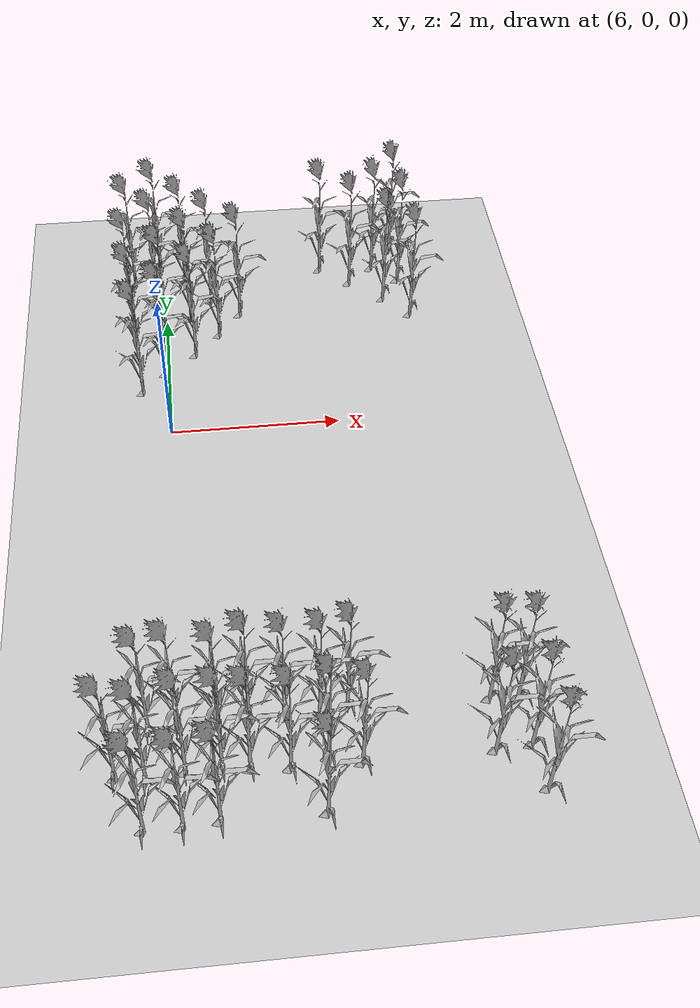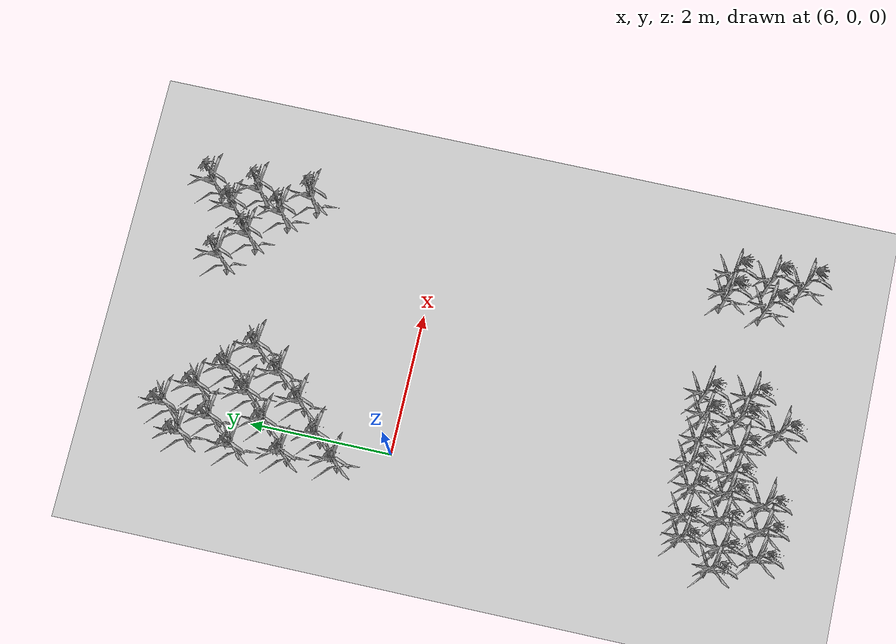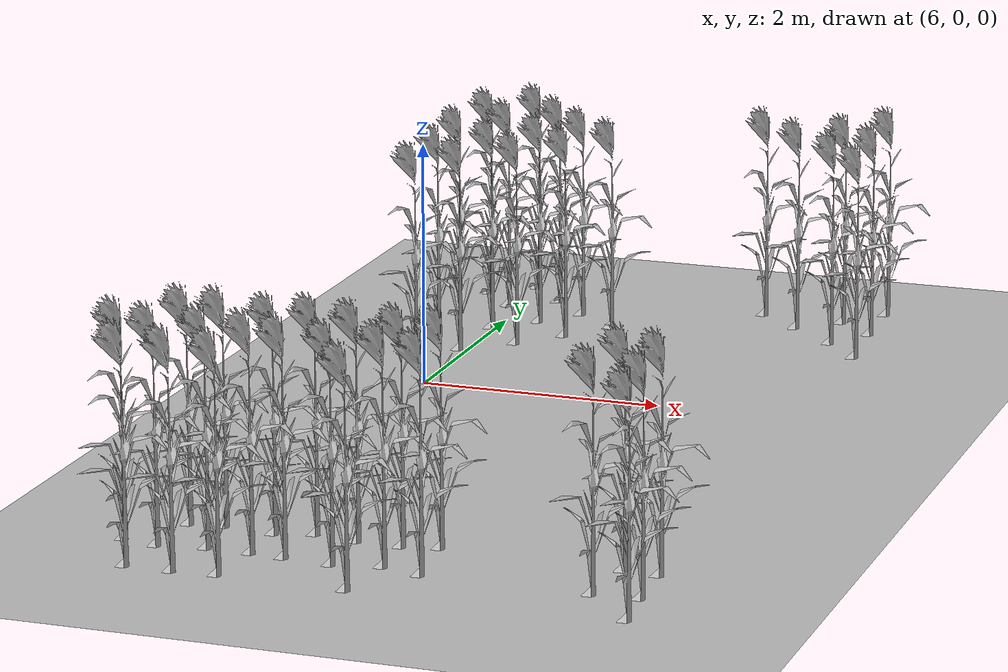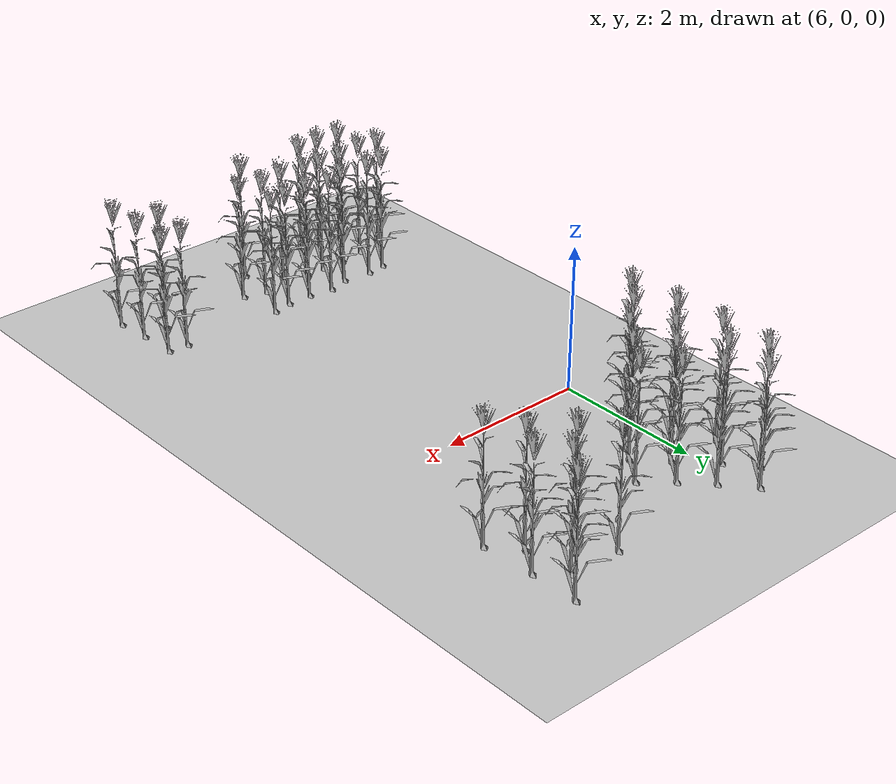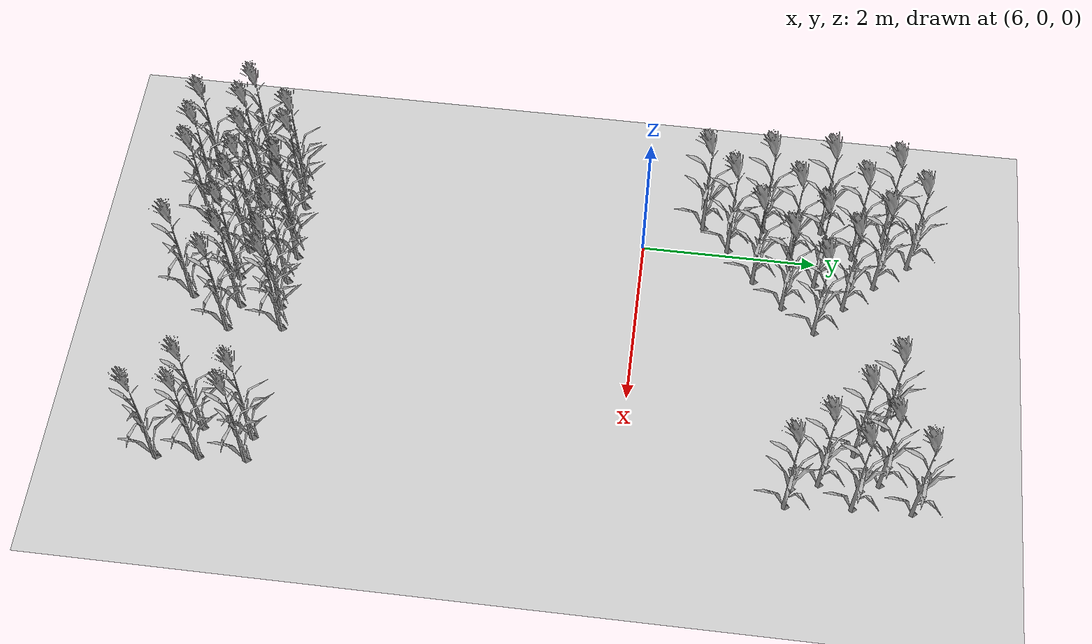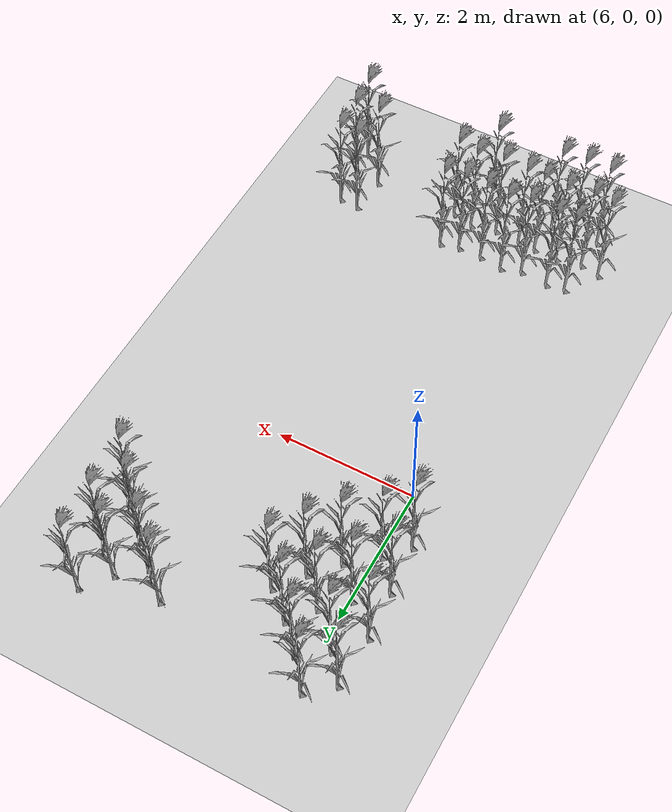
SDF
<sdf version="1.7">
 <world name="farmland_world">
  <model name="ground_plane">
   <static>1</static>
   <link name="link">
    <collision name="collision">
     <geometry><plane><normal>0 0 1</normal><size>40.0 40.0</size></plane></geometry>
     <surface><friction><ode><mu>100</mu><mu2>50</mu2></ode></friction></surface>
    </collision>
    <visual name="visual">
     <cast_shadows>0</cast_shadows>
     <geometry><plane><normal>0 0 1</normal><size>40.0 40.0</size></plane></geometry>
     <material>
      <script><uri>file://media/materials/scripts/gazebo.material</uri><name>Gazebo/Grey</name></script>
     </material>
    </visual>
   </link>
  </model>
  <model name="tree_3_84">
   <static>1</static>
   <link name="link">
    <collision name="collision">
     <geometry><mesh><uri>model://Corn_low_poly/corn.obj</uri><scale>1 1 1</scale></mesh></geometry>
     <surface><friction><ode><mu>100</mu><mu2>50</mu2></ode></friction></surface>
    </collision>
    <visual name="visual">
     <geometry><mesh><uri>model://Corn_low_poly/corn.obj</uri><scale>1 1 1</scale></mesh></geometry>
    </visual>
   </link>
   <pose>5.681553277940606 0.698112095116381 0 0 0 0</pose>
  </model>
  <model name="tree_3_126">
   <static>1</static>
   <link name="link">
    <collision name="collision">
     <geometry><mesh><uri>model://Corn_low_poly/corn.obj</uri><scale>1 1 1</scale></mesh></geometry>
     <surface><friction><ode><mu>100</mu><mu2>50</mu2></ode></friction></surface>
    </collision>
    <visual name="visual">
     <geometry><mesh><uri>model://Corn_low_poly/corn.obj</uri><scale>1 1 1</scale></mesh></geometry>
    </visual>
   </link>
   <pose>5.961361274464771 1.003184271032604 0 0 0 0</pose>
  </model>
  <model name="tree_3_127">
   <static>1</static>
   <link name="link">
    <collision name="collision">
     <geometry><mesh><uri>model://Corn_low_poly/corn.obj</uri><scale>1 1 1</scale></mesh></geometry>
     <surface><friction><ode><mu>100</mu><mu2>50</mu2></ode></friction></surface>
    </collision>
    <visual name="visual">
     <geometry><mesh><uri>model://Corn_low_poly/corn.obj</uri><scale>1 1 1</scale></mesh></geometry>
    </visual>
   </link>
   <pose>5.626600193499851 1.3966899550607776 0 0 0 0</pose>
  </model>
  <model name="tree_3_168">
   <static>1</static>
   <link name="link">
    <collision name="collision">
     <geometry><mesh><uri>model://Corn_low_poly/corn.obj</uri><scale>1 1 1</scale></mesh></geometry>
     <surface><friction><ode><mu>100</mu><mu2>50</mu2></ode></friction></surface>
    </collision>
    <visual name="visual">
     <geometry><mesh><uri>model://Corn_low_poly/corn.obj</uri><scale>1 1 1</scale></mesh></geometry>
    </visual>
   </link>
   <pose>6.3515983419720365 1.321116759056756 0 0 0 0</pose>
  </model>
  <model name="tree_3_169">
   <static>1</static>
   <link name="link">
    <collision name="collision">
     <geometry><mesh><uri>model://Corn_low_poly/corn.obj</uri><scale>1 1 1</scale></mesh></geometry>
     <surface><friction><ode><mu>100</mu><mu2>50</mu2></ode></friction></surface>
    </collision>
    <visual name="visual">
     <geometry><mesh><uri>model://Corn_low_poly/corn.obj</uri><scale>1 1 1</scale></mesh></geometry>
    </visual>
   </link>
   <pose>5.9923092816707895 1.7190902440700961 0 0 0 0</pose>
  </model>
  <model name="tree_3_170">
   <static>1</static>
   <link name="link">
    <collision name="collision">
     <geometry><mesh><uri>model://Corn_low_poly/corn.obj</uri><scale>1 1 1</scale></mesh></geometry>
     <surface><friction><ode><mu>100</mu><mu2>50</mu2></ode></friction></surface>
    </collision>
    <visual name="visual">
     <geometry><mesh><uri>model://Corn_low_poly/corn.obj</uri><scale>1 1 1</scale></mesh></geometry>
    </visual>
   </link>
   <pose>5.575533158430685 2.068186131606594 0 0 0 0</pose>
  </model>
  <model name="tree_3_210">
   <static>1</static>
   <link name="link">
    <collision name="collision">
     <geometry><mesh><uri>model://Corn_low_poly/corn.obj</uri><scale>1 1 1</scale></mesh></geometry>
     <surface><friction><ode><mu>100</mu><mu2>50</mu2></ode></friction></surface>
    </collision>
    <visual name="visual">
     <geometry><mesh><uri>model://Corn_low_poly/corn.obj</uri><scale>1 1 1</scale></mesh></geometry>
    </visual>
   </link>
   <pose>6.665183877503928 1.6705067818551682 0 0 0 0</pose>
  </model>
  <model name="tree_3_211">
   <static>1</static>
   <link name="link">
    <collision name="collision">
     <geometry><mesh><uri>model://Corn_low_poly/corn.obj</uri><scale>1 1 1</scale></mesh></geometry>
     <surface><friction><ode><mu>100</mu><mu2>50</mu2></ode></friction></surface>
    </collision>
    <visual name="visual">
     <geometry><mesh><uri>model://Corn_low_poly/corn.obj</uri><scale>1 1 1</scale></mesh></geometry>
    </visual>
   </link>
   <pose>6.316620289490981 2.025105712251385 0 0 0 0</pose>
  </model>
  <model name="tree_3_212">
   <static>1</static>
   <link name="link">
    <collision name="collision">
     <geometry><mesh><uri>model://Corn_low_poly/corn.obj</uri><scale>1 1 1</scale></mesh></geometry>
     <surface><friction><ode><mu>100</mu><mu2>50</mu2></ode></friction></surface>
    </collision>
    <visual name="visual">
     <geometry><mesh><uri>model://Corn_low_poly/corn.obj</uri><scale>1 1 1</scale></mesh></geometry>
    </visual>
   </link>
   <pose>5.891660939822925 2.439447878122614 0 0 0 0</pose>
  </model>
  <model name="tree_3_213">
   <static>1</static>
   <link name="link">
    <collision name="collision">
     <geometry><mesh><uri>model://Corn_low_poly/corn.obj</uri><scale>1 1 1</scale></mesh></geometry>
     <surface><friction><ode><mu>100</mu><mu2>50</mu2></ode></friction></surface>
    </collision>
    <visual name="visual">
     <geometry><mesh><uri>model://Corn_low_poly/corn.obj</uri><scale>1 1 1</scale></mesh></geometry>
    </visual>
   </link>
   <pose>5.6035574261246826 2.7883179646014415 0 0 0 0</pose>
  </model>
  <model name="tree_3_252">
   <static>1</static>
   <link name="link">
    <collision name="collision">
     <geometry><mesh><uri>model://Corn_low_poly/corn.obj</uri><scale>1 1 1</scale></mesh></geometry>
     <surface><friction><ode><mu>100</mu><mu2>50</mu2></ode></friction></surface>
    </collision>
    <visual name="visual">
     <geometry><mesh><uri>model://Corn_low_poly/corn.obj</uri><scale>1 1 1</scale></mesh></geometry>
    </visual>
   </link>
   <pose>6.953380903516878 2.0482372031177807 0 0 0 0</pose>
  </model>
  <model name="tree_3_253">
   <static>1</static>
   <link name="link">
    <collision name="collision">
     <geometry><mesh><uri>model://Corn_low_poly/corn.obj</uri><scale>1 1 1</scale></mesh></geometry>
     <surface><friction><ode><mu>100</mu><mu2>50</mu2></ode></friction></surface>
    </collision>
    <visual name="visual">
     <geometry><mesh><uri>model://Corn_low_poly/corn.obj</uri><scale>1 1 1</scale></mesh></geometry>
    </visual>
   </link>
   <pose>6.590621309928118 2.3640805608848225 0 0 0 0</pose>
  </model>
  <model name="tree_3_254">
   <static>1</static>
   <link name="link">
    <collision name="collision">
     <geometry><mesh><uri>model://Corn_low_poly/corn.obj</uri><scale>1 1 1</scale></mesh></geometry>
     <surface><friction><ode><mu>100</mu><mu2>50</mu2></ode></friction></surface>
    </collision>
    <visual name="visual">
     <geometry><mesh><uri>model://Corn_low_poly/corn.obj</uri><scale>1 1 1</scale></mesh></geometry>
    </visual>
   </link>
   <pose>6.266759116223402 2.7026774692607254 0 0 0 0</pose>
  </model>
  <model name="tree_3_255">
   <static>1</static>
   <link name="link">
    <collision name="collision">
     <geometry><mesh><uri>model://Corn_low_poly/corn.obj</uri><scale>1 1 1</scale></mesh></geometry>
     <surface><friction><ode><mu>100</mu><mu2>50</mu2></ode></friction></surface>
    </collision>
    <visual name="visual">
     <geometry><mesh><uri>model://Corn_low_poly/corn.obj</uri><scale>1 1 1</scale></mesh></geometry>
    </visual>
   </link>
   <pose>5.945273309091108 3.0801113058974328 0 0 0 0</pose>
  </model>
  <model name="tree_3_299">
   <static>1</static>
   <link name="link">
    <collision name="collision">
     <geometry><mesh><uri>model://Corn_low_poly/corn.obj</uri><scale>1 1 1</scale></mesh></geometry>
     <surface><friction><ode><mu>100</mu><mu2>50</mu2></ode></friction></surface>
    </collision>
    <visual name="visual">
     <geometry><mesh><uri>model://Corn_low_poly/corn.obj</uri><scale>1 1 1</scale></mesh></geometry>
    </visual>
   </link>
   <pose>9.157282897630957 1.8305126819123552 0 0 0 0</pose>
  </model>
  <model name="tree_3_300">
   <static>1</static>
   <link name="link">
    <collision name="collision">
     <geometry><mesh><uri>model://Corn_low_poly/corn.obj</uri><scale>1 1 1</scale></mesh></geometry>
     <surface><friction><ode><mu>100</mu><mu2>50</mu2></ode></friction></surface>
    </collision>
    <visual name="visual">
     <geometry><mesh><uri>model://Corn_low_poly/corn.obj</uri><scale>1 1 1</scale></mesh></geometry>
    </visual>
   </link>
   <pose>8.85152102309784 2.181259146612725 0 0 0 0</pose>
  </model>
  <model name="tree_3_301">
   <static>1</static>
   <link name="link">
    <collision name="collision">
     <geometry><mesh><uri>model://Corn_low_poly/corn.obj</uri><scale>1 1 1</scale></mesh></geometry>
     <surface><friction><ode><mu>100</mu><mu2>50</mu2></ode></friction></surface>
    </collision>
    <visual name="visual">
     <geometry><mesh><uri>model://Corn_low_poly/corn.obj</uri><scale>1 1 1</scale></mesh></geometry>
    </visual>
   </link>
   <pose>8.448815377440983 2.5519282578568174 0 0 0 0</pose>
  </model>
  <model name="tree_3_302">
   <static>1</static>
   <link name="link">
    <collision name="collision">
     <geometry><mesh><uri>model://Corn_low_poly/corn.obj</uri><scale>1 1 1</scale></mesh></geometry>
     <surface><friction><ode><mu>100</mu><mu2>50</mu2></ode></friction></surface>
    </collision>
    <visual name="visual">
     <geometry><mesh><uri>model://Corn_low_poly/corn.obj</uri><scale>1 1 1</scale></mesh></geometry>
    </visual>
   </link>
   <pose>8.081302341867612 2.868279797391849 0 0 0 0</pose>
  </model>
  <model name="tree_3_345">
   <static>1</static>
   <link name="link">
    <collision name="collision">
     <geometry><mesh><uri>model://Corn_low_poly/corn.obj</uri><scale>1 1 1</scale></mesh></geometry>
     <surface><friction><ode><mu>100</mu><mu2>50</mu2></ode></friction></surface>
    </collision>
    <visual name="visual">
     <geometry><mesh><uri>model://Corn_low_poly/corn.obj</uri><scale>1 1 1</scale></mesh></geometry>
    </visual>
   </link>
   <pose>9.099413566563564 2.550294904202161 0 0 0 0</pose>
  </model>
  <model name="tree_3_346">
   <static>1</static>
   <link name="link">
    <collision name="collision">
     <geometry><mesh><uri>model://Corn_low_poly/corn.obj</uri><scale>1 1 1</scale></mesh></geometry>
     <surface><friction><ode><mu>100</mu><mu2>50</mu2></ode></friction></surface>
    </collision>
    <visual name="visual">
     <geometry><mesh><uri>model://Corn_low_poly/corn.obj</uri><scale>1 1 1</scale></mesh></geometry>
    </visual>
   </link>
   <pose>8.78196329360171 2.834822227837456 0 0 0 0</pose>
  </model>
  <model name="tree_3_391">
   <static>1</static>
   <link name="link">
    <collision name="collision">
     <geometry><mesh><uri>model://Corn_low_poly/corn.obj</uri><scale>1 1 1</scale></mesh></geometry>
     <surface><friction><ode><mu>100</mu><mu2>50</mu2></ode></friction></surface>
    </collision>
    <visual name="visual">
     <geometry><mesh><uri>model://Corn_low_poly/corn.obj</uri><scale>1 1 1</scale></mesh></geometry>
    </visual>
   </link>
   <pose>9.077012908640285 3.1940638028331647 0 0 0 0</pose>
  </model>
  <model name="tree_3_930">
   <static>1</static>
   <link name="link">
    <collision name="collision">
     <geometry><mesh><uri>model://Corn_low_poly/corn.obj</uri><scale>1 1 1</scale></mesh></geometry>
     <surface><friction><ode><mu>100</mu><mu2>50</mu2></ode></friction></surface>
    </collision>
    <visual name="visual">
     <geometry><mesh><uri>model://Corn_low_poly/corn.obj</uri><scale>1 1 1</scale></mesh></geometry>
    </visual>
   </link>
   <pose>5.366799109336904 -4.49391334698198 0 0 0 0</pose>
  </model>
  <model name="tree_3_955">
   <static>1</static>
   <link name="link">
    <collision name="collision">
     <geometry><mesh><uri>model://Corn_low_poly/corn.obj</uri><scale>1 1 1</scale></mesh></geometry>
     <surface><friction><ode><mu>100</mu><mu2>50</mu2></ode></friction></surface>
    </collision>
    <visual name="visual">
     <geometry><mesh><uri>model://Corn_low_poly/corn.obj</uri><scale>1 1 1</scale></mesh></geometry>
    </visual>
   </link>
   <pose>5.683695191662203 -4.027797122546423 0 0 0 0</pose>
  </model>
  <model name="tree_3_956">
   <static>1</static>
   <link name="link">
    <collision name="collision">
     <geometry><mesh><uri>model://Corn_low_poly/corn.obj</uri><scale>1 1 1</scale></mesh></geometry>
     <surface><friction><ode><mu>100</mu><mu2>50</mu2></ode></friction></surface>
    </collision>
    <visual name="visual">
     <geometry><mesh><uri>model://Corn_low_poly/corn.obj</uri><scale>1 1 1</scale></mesh></geometry>
    </visual>
   </link>
   <pose>5.652873046034418 -4.557701514261241 0 0 0 0</pose>
  </model>
  <model name="tree_3_957">
   <static>1</static>
   <link name="link">
    <collision name="collision">
     <geometry><mesh><uri>model://Corn_low_poly/corn.obj</uri><scale>1 1 1</scale></mesh></geometry>
     <surface><friction><ode><mu>100</mu><mu2>50</mu2></ode></friction></surface>
    </collision>
    <visual name="visual">
     <geometry><mesh><uri>model://Corn_low_poly/corn.obj</uri><scale>1 1 1</scale></mesh></geometry>
    </visual>
   </link>
   <pose>5.621698696048546 -5.047966214135611 0 0 0 0</pose>
  </model>
  <model name="tree_3_981">
   <static>1</static>
   <link name="link">
    <collision name="collision">
     <geometry><mesh><uri>model://Corn_low_poly/corn.obj</uri><scale>1 1 1</scale></mesh></geometry>
     <surface><friction><ode><mu>100</mu><mu2>50</mu2></ode></friction></surface>
    </collision>
    <visual name="visual">
     <geometry><mesh><uri>model://Corn_low_poly/corn.obj</uri><scale>1 1 1</scale></mesh></geometry>
    </visual>
   </link>
   <pose>5.954240699755578 -3.9904738530546013 0 0 0 0</pose>
  </model>
  <model name="tree_3_982">
   <static>1</static>
   <link name="link">
    <collision name="collision">
     <geometry><mesh><uri>model://Corn_low_poly/corn.obj</uri><scale>1 1 1</scale></mesh></geometry>
     <surface><friction><ode><mu>100</mu><mu2>50</mu2></ode></friction></surface>
    </collision>
    <visual name="visual">
     <geometry><mesh><uri>model://Corn_low_poly/corn.obj</uri><scale>1 1 1</scale></mesh></geometry>
    </visual>
   </link>
   <pose>6.0241262191217775 -4.4962754883779406 0 0 0 0</pose>
  </model>
  <model name="tree_3_983">
   <static>1</static>
   <link name="link">
    <collision name="collision">
     <geometry><mesh><uri>model://Corn_low_poly/corn.obj</uri><scale>1 1 1</scale></mesh></geometry>
     <surface><friction><ode><mu>100</mu><mu2>50</mu2></ode></friction></surface>
    </collision>
    <visual name="visual">
     <geometry><mesh><uri>model://Corn_low_poly/corn.obj</uri><scale>1 1 1</scale></mesh></geometry>
    </visual>
   </link>
   <pose>5.985854351266813 -5.053137056495224 0 0 0 0</pose>
  </model>
  <model name="tree_3_1007">
   <static>1</static>
   <link name="link">
    <collision name="collision">
     <geometry><mesh><uri>model://Corn_low_poly/corn.obj</uri><scale>1 1 1</scale></mesh></geometry>
     <surface><friction><ode><mu>100</mu><mu2>50</mu2></ode></friction></surface>
    </collision>
    <visual name="visual">
     <geometry><mesh><uri>model://Corn_low_poly/corn.obj</uri><scale>1 1 1</scale></mesh></geometry>
    </visual>
   </link>
   <pose>6.361537539743322 -4.03561061656696 0 0 0 0</pose>
  </model>
  <model name="tree_3_1008">
   <static>1</static>
   <link name="link">
    <collision name="collision">
     <geometry><mesh><uri>model://Corn_low_poly/corn.obj</uri><scale>1 1 1</scale></mesh></geometry>
     <surface><friction><ode><mu>100</mu><mu2>50</mu2></ode></friction></surface>
    </collision>
    <visual name="visual">
     <geometry><mesh><uri>model://Corn_low_poly/corn.obj</uri><scale>1 1 1</scale></mesh></geometry>
    </visual>
   </link>
   <pose>6.3702001816119935 -4.502409199095213 0 0 0 0</pose>
  </model>
  <model name="tree_3_1009">
   <static>1</static>
   <link name="link">
    <collision name="collision">
     <geometry><mesh><uri>model://Corn_low_poly/corn.obj</uri><scale>1 1 1</scale></mesh></geometry>
     <surface><friction><ode><mu>100</mu><mu2>50</mu2></ode></friction></surface>
    </collision>
    <visual name="visual">
     <geometry><mesh><uri>model://Corn_low_poly/corn.obj</uri><scale>1 1 1</scale></mesh></geometry>
    </visual>
   </link>
   <pose>6.327852123046294 -5.024424595203493 0 0 0 0</pose>
  </model>
  <model name="tree_3_1033">
   <static>1</static>
   <link name="link">
    <collision name="collision">
     <geometry><mesh><uri>model://Corn_low_poly/corn.obj</uri><scale>1 1 1</scale></mesh></geometry>
     <surface><friction><ode><mu>100</mu><mu2>50</mu2></ode></friction></surface>
    </collision>
    <visual name="visual">
     <geometry><mesh><uri>model://Corn_low_poly/corn.obj</uri><scale>1 1 1</scale></mesh></geometry>
    </visual>
   </link>
   <pose>6.654601275825199 -3.950518905444222 0 0 0 0</pose>
  </model>
  <model name="tree_3_1034">
   <static>1</static>
   <link name="link">
    <collision name="collision">
     <geometry><mesh><uri>model://Corn_low_poly/corn.obj</uri><scale>1 1 1</scale></mesh></geometry>
     <surface><friction><ode><mu>100</mu><mu2>50</mu2></ode></friction></surface>
    </collision>
    <visual name="visual">
     <geometry><mesh><uri>model://Corn_low_poly/corn.obj</uri><scale>1 1 1</scale></mesh></geometry>
    </visual>
   </link>
   <pose>6.633942394505698 -4.521218827116726 0 0 0 0</pose>
  </model>
  <model name="tree_3_1059">
   <static>1</static>
   <link name="link">
    <collision name="collision">
     <geometry><mesh><uri>model://Corn_low_poly/corn.obj</uri><scale>1 1 1</scale></mesh></geometry>
     <surface><friction><ode><mu>100</mu><mu2>50</mu2></ode></friction></surface>
    </collision>
    <visual name="visual">
     <geometry><mesh><uri>model://Corn_low_poly/corn.obj</uri><scale>1 1 1</scale></mesh></geometry>
    </visual>
   </link>
   <pose>6.996278751928765 -4.003192865272128 0 0 0 0</pose>
  </model>
  <model name="tree_3_1060">
   <static>1</static>
   <link name="link">
    <collision name="collision">
     <geometry><mesh><uri>model://Corn_low_poly/corn.obj</uri><scale>1 1 1</scale></mesh></geometry>
     <surface><friction><ode><mu>100</mu><mu2>50</mu2></ode></friction></surface>
    </collision>
    <visual name="visual">
     <geometry><mesh><uri>model://Corn_low_poly/corn.obj</uri><scale>1 1 1</scale></mesh></geometry>
    </visual>
   </link>
   <pose>7.011984394799155 -4.555997563974482 0 0 0 0</pose>
  </model>
  <model name="tree_3_1085">
   <static>1</static>
   <link name="link">
    <collision name="collision">
     <geometry><mesh><uri>model://Corn_low_poly/corn.obj</uri><scale>1 1 1</scale></mesh></geometry>
     <surface><friction><ode><mu>100</mu><mu2>50</mu2></ode></friction></surface>
    </collision>
    <visual name="visual">
     <geometry><mesh><uri>model://Corn_low_poly/corn.obj</uri><scale>1 1 1</scale></mesh></geometry>
    </visual>
   </link>
   <pose>7.34611884697215 -4.009496856816753 0 0 0 0</pose>
  </model>
  <model name="tree_3_1086">
   <static>1</static>
   <link name="link">
    <collision name="collision">
     <geometry><mesh><uri>model://Corn_low_poly/corn.obj</uri><scale>1 1 1</scale></mesh></geometry>
     <surface><friction><ode><mu>100</mu><mu2>50</mu2></ode></friction></surface>
    </collision>
    <visual name="visual">
     <geometry><mesh><uri>model://Corn_low_poly/corn.obj</uri><scale>1 1 1</scale></mesh></geometry>
    </visual>
   </link>
   <pose>7.379295037931062 -4.47601657745961 0 0 0 0</pose>
  </model>
  <model name="tree_3_1087">
   <static>1</static>
   <link name="link">
    <collision name="collision">
     <geometry><mesh><uri>model://Corn_low_poly/corn.obj</uri><scale>1 1 1</scale></mesh></geometry>
     <surface><friction><ode><mu>100</mu><mu2>50</mu2></ode></friction></surface>
    </collision>
    <visual name="visual">
     <geometry><mesh><uri>model://Corn_low_poly/corn.obj</uri><scale>1 1 1</scale></mesh></geometry>
    </visual>
   </link>
   <pose>7.313481460409338 -5.03879345731665 0 0 0 0</pose>
  </model>
  <model name="tree_3_1111">
   <static>1</static>
   <link name="link">
    <collision name="collision">
     <geometry><mesh><uri>model://Corn_low_poly/corn.obj</uri><scale>1 1 1</scale></mesh></geometry>
     <surface><friction><ode><mu>100</mu><mu2>50</mu2></ode></friction></surface>
    </collision>
    <visual name="visual">
     <geometry><mesh><uri>model://Corn_low_poly/corn.obj</uri><scale>1 1 1</scale></mesh></geometry>
    </visual>
   </link>
   <pose>7.623541348674466 -3.952919947916643 0 0 0 0</pose>
  </model>
  <model name="tree_3_1112">
   <static>1</static>
   <link name="link">
    <collision name="collision">
     <geometry><mesh><uri>model://Corn_low_poly/corn.obj</uri><scale>1 1 1</scale></mesh></geometry>
     <surface><friction><ode><mu>100</mu><mu2>50</mu2></ode></friction></surface>
    </collision>
    <visual name="visual">
     <geometry><mesh><uri>model://Corn_low_poly/corn.obj</uri><scale>1 1 1</scale></mesh></geometry>
    </visual>
   </link>
   <pose>7.695806368296694 -4.563548746541911 0 0 0 0</pose>
  </model>
  <model name="tree_3_1137">
   <static>1</static>
   <link name="link">
    <collision name="collision">
     <geometry><mesh><uri>model://Corn_low_poly/corn.obj</uri><scale>1 1 1</scale></mesh></geometry>
     <surface><friction><ode><mu>100</mu><mu2>50</mu2></ode></friction></surface>
    </collision>
    <visual name="visual">
     <geometry><mesh><uri>model://Corn_low_poly/corn.obj</uri><scale>1 1 1</scale></mesh></geometry>
    </visual>
   </link>
   <pose>9.026540316177568 -3.9953088072774325 0 0 0 0</pose>
  </model>
  <model name="tree_3_1138">
   <static>1</static>
   <link name="link">
    <collision name="collision">
     <geometry><mesh><uri>model://Corn_low_poly/corn.obj</uri><scale>1 1 1</scale></mesh></geometry>
     <surface><friction><ode><mu>100</mu><mu2>50</mu2></ode></friction></surface>
    </collision>
    <visual name="visual">
     <geometry><mesh><uri>model://Corn_low_poly/corn.obj</uri><scale>1 1 1</scale></mesh></geometry>
    </visual>
   </link>
   <pose>8.974399481872528 -4.561975606768592 0 0 0 0</pose>
  </model>
  <model name="tree_3_1163">
   <static>1</static>
   <link name="link">
    <collision name="collision">
     <geometry><mesh><uri>model://Corn_low_poly/corn.obj</uri><scale>1 1 1</scale></mesh></geometry>
     <surface><friction><ode><mu>100</mu><mu2>50</mu2></ode></friction></surface>
    </collision>
    <visual name="visual">
     <geometry><mesh><uri>model://Corn_low_poly/corn.obj</uri><scale>1 1 1</scale></mesh></geometry>
    </visual>
   </link>
   <pose>9.305645503913349 -4.016931834699058 0 0 0 0</pose>
  </model>
  <model name="tree_3_1164">
   <static>1</static>
   <link name="link">
    <collision name="collision">
     <geometry><mesh><uri>model://Corn_low_poly/corn.obj</uri><scale>1 1 1</scale></mesh></geometry>
     <surface><friction><ode><mu>100</mu><mu2>50</mu2></ode></friction></surface>
    </collision>
    <visual name="visual">
     <geometry><mesh><uri>model://Corn_low_poly/corn.obj</uri><scale>1 1 1</scale></mesh></geometry>
    </visual>
   </link>
   <pose>9.333165260753988 -4.534840149731487 0 0 0 0</pose>
  </model>
  <model name="tree_3_1165">
   <static>1</static>
   <link name="link">
    <collision name="collision">
     <geometry><mesh><uri>model://Corn_low_poly/corn.obj</uri><scale>1 1 1</scale></mesh></geometry>
     <surface><friction><ode><mu>100</mu><mu2>50</mu2></ode></friction></surface>
    </collision>
    <visual name="visual">
     <geometry><mesh><uri>model://Corn_low_poly/corn.obj</uri><scale>1 1 1</scale></mesh></geometry>
    </visual>
   </link>
   <pose>9.379616878487157 -5.001240467588176 0 0 0 0</pose>
  </model>
 </world>
</sdf>
